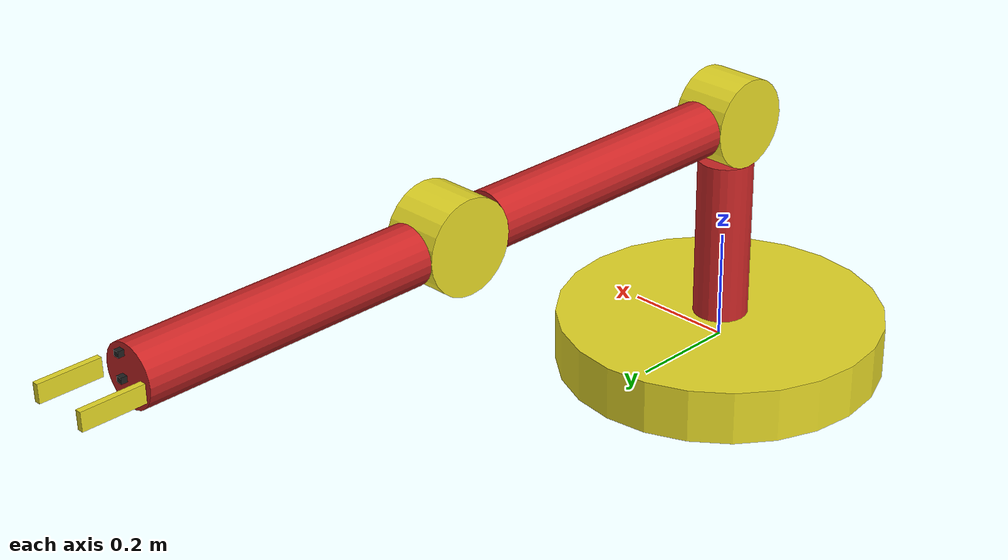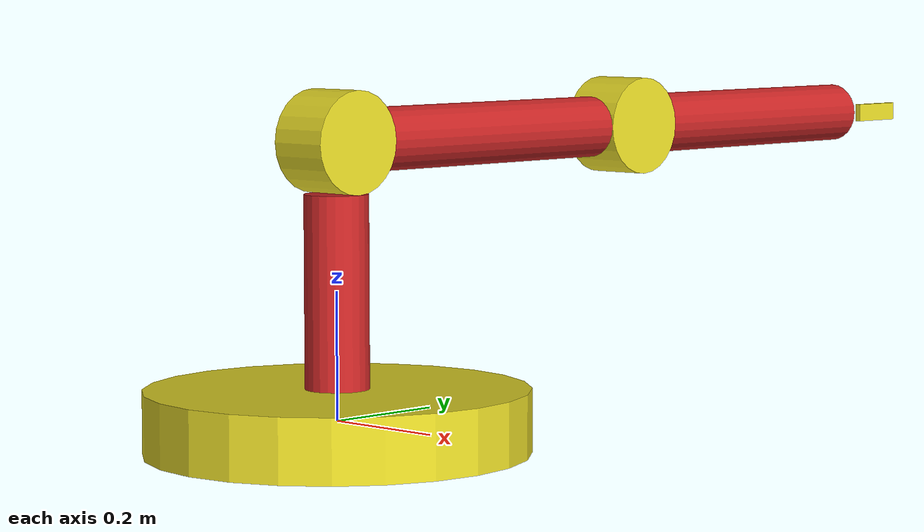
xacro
<?xml version='1.0'?>
<robot name="arm" xmlns:xacro="http://www.ros.org/wiki/xacro">
  <xacro:include filename="$(find arm_description)/urdf/arm.gazebo" />
  <xacro:include filename="$(find arm_description)/urdf/macros.xacro" />

  <xacro:property name="base_radius" value="0.3" />
  <xacro:property name="base_height" value="0.1" />
  <xacro:property name="base_mass" value="100" />

  <xacro:property name="post_radius" value="0.05" />
  <xacro:property name="post_height" value="0.3" />
  <xacro:property name="post_mass" value="1" />

  <xacro:property name="elbow_radius" value="0.08" />
  <xacro:property name="elbow_mass" value="0.3" />

  <xacro:property name="arm_1_radius" value="0.05" />
  <xacro:property name="arm_1_length" value="0.5" />
  <xacro:property name="arm_1_mass" value="1" />

  <xacro:property name="arm_2_radius" value="0.05" />
  <xacro:property name="arm_2_length" value="0.5" />
  <xacro:property name="arm_2_mass" value="2" />

  <xacro:property name="finger_thickness" value="0.01" />
  <xacro:property name="finger_length" value="0.1" />
  <xacro:property name="grip_width" value="0.1" />
  <xacro:property name="finger_mass" value="0.1" />

  <link name='base'>
    <inertial>
      <mass value="${base_mass}"/>
      <origin xyz="0 0 0" rpy=" 0 0 0"/>
      <xacro:cylinder_inertia m="${base_mass}" r="${base_radius}" h="${base_height}" />
    </inertial>
    <collision>
      <origin xyz="0 0 0" rpy=" 0 0 0"/>
      <geometry>
        <cylinder length="${base_height}" radius="${base_radius}"/>
      </geometry>
    </collision>
    <visual>
      <origin xyz="0 0 0" rpy=" 0 0 0"/>
      <geometry>
        <cylinder length="${base_height}" radius="${base_radius}"/>
      </geometry>
    </visual>
  </link>

  <link name='post'>
    <inertial>
      <mass value="${post_mass}"/>
      <origin xyz="0 0 0" rpy=" 0 0 0"/>
      <xacro:cylinder_inertia m="${post_mass}" r="${post_radius}" h="${post_height}" />
    </inertial>
    <collision>
      <origin xyz="0 0 0" rpy=" 0 0 0"/>
      <geometry>
        <cylinder length="${post_height}" radius="${post_radius}"/>
      </geometry>
    </collision>
    <visual>
      <origin xyz="0 0 0" rpy=" 0 0 0"/>
      <geometry>
        <cylinder length="${post_height}" radius="${post_radius}"/>
      </geometry>
    </visual>
  </link>

  <link name='elbow_1'>
    <inertial>
      <mass value="${elbow_mass}"/>
      <origin xyz="0 0 0" rpy=" 0 0 0"/>
      <xacro:cylinder_inertia m="${elbow_mass}" r="${elbow_radius}" h="${2 * post_radius}" />
    </inertial>
    <collision>
      <origin xyz="0 0 0" rpy=" 0 0 0"/>
      <geometry>
        <cylinder length="${2 * post_radius}" radius="${elbow_radius}"/>
      </geometry>
    </collision>
    <visual>
      <origin xyz="0 0 0" rpy=" 0 0 0"/>
      <geometry>
        <cylinder length="${2 * post_radius}" radius="${elbow_radius}"/>
      </geometry>
    </visual>
  </link>

  <link name='arm_1'>
    <inertial>
      <mass value="${arm_1_mass}"/>
      <origin xyz="0 0 0" rpy=" 0 0 0"/>
      <xacro:cylinder_inertia m="${arm_1_mass}" r="${arm_1_radius}" h="${arm_1_length}" />
    </inertial>
    <collision>
      <origin xyz="0 0 0" rpy=" 0 0 0"/>
      <geometry>
        <cylinder length="${arm_1_length}" radius="${arm_1_radius}"/>
      </geometry>
    </collision>
    <visual>
      <origin xyz="0 0 0" rpy=" 0 0 0"/>
      <geometry>
        <cylinder length="${arm_1_length}" radius="${arm_1_radius}"/>
      </geometry>
    </visual>
  </link>

  <link name='elbow_2'>
    <inertial>
      <mass value="${elbow_mass}"/>
      <origin xyz="0 0 0" rpy=" 0 0 0"/>
      <xacro:cylinder_inertia m="${elbow_mass}" r="${elbow_radius}" h="${2 * arm_1_radius}" />
    </inertial>
    <collision>
      <origin xyz="0 0 0" rpy=" 0 0 0"/>
      <geometry>
        <cylinder length="${2 * arm_1_radius}" radius="${elbow_radius}"/>
      </geometry>
    </collision>
    <visual>
      <origin xyz="0 0 0" rpy=" 0 0 0"/>
      <geometry>
        <cylinder length="${2 * arm_1_radius}" radius="${elbow_radius}"/>
      </geometry>
    </visual>
  </link>

  <link name='arm_2'>
    <inertial>
      <mass value="${arm_2_mass}"/>
      <origin xyz="0 0 0" rpy=" 0 0 0"/>
      <xacro:cylinder_inertia m="${arm_2_mass}" r="${arm_2_radius}" h="${arm_2_length}" />
    </inertial>
    <collision>
      <origin xyz="0 0 0" rpy=" 0 0 0"/>
      <geometry>
        <cylinder length="${arm_2_length}" radius="${arm_2_radius}"/>
      </geometry>
    </collision>
    <visual>
      <origin xyz="0 0 0" rpy=" 0 0 0"/>
      <geometry>
        <cylinder length="${arm_2_length}" radius="${arm_2_radius}"/>
      </geometry>
    </visual>
  </link>

  <link name='left_finger'>
    <inertial>
      <mass value="${finger_mass}"/>
      <origin xyz="0 0 0" rpy=" 0 0 0"/>
      <xacro:box_inertia m="${finger_mass}" x="${finger_thickness * 3}" y="${finger_thickness}" z="${finger_length}" />
    </inertial>
    <collision>
      <origin xyz="0 0 0" rpy=" 0 0 0"/>
      <geometry>
        <box size="${finger_thickness * 3} ${finger_thickness} ${finger_length}"/>
      </geometry>
    </collision>
    <visual>
      <origin xyz="0 0 0" rpy=" 0 0 0"/>
      <geometry>
        <box size="${finger_thickness * 3} ${finger_thickness} ${finger_length}"/>
      </geometry>
    </visual>
    <surface>
      <friction>
        <ode>
          <mu>100</mu>
          <mu2>100</mu2>
        </ode>
      </friction>
    </surface>
  </link>

  <link name='right_finger'>
    <inertial>
      <mass value="${finger_mass}"/>
      <origin xyz="0 0 0" rpy=" 0 0 0"/>
      <xacro:box_inertia m="${finger_mass * 3}" x="${finger_thickness}" y="${finger_thickness}" z="${finger_length}" />
    </inertial>
    <collision>
      <origin xyz="0 0 0" rpy=" 0 0 0"/>
      <geometry>
        <box size="${finger_thickness * 3} ${finger_thickness} ${finger_length}"/>
      </geometry>
    </collision>
    <visual>
      <origin xyz="0 0 0" rpy=" 0 0 0"/>
      <geometry>
        <box size="${finger_thickness * 3} ${finger_thickness} ${finger_length}"/>
      </geometry>
    </visual>
    <surface>
      <friction>
        <ode>
          <mu>100</mu>
          <mu2>100</mu2>
        </ode>
      </friction>
    </surface>
  </link>

  <link name='arm_lidar'>
    <visual>
      <origin xyz="0 0 0" rpy=" 0 0 0"/>
      <geometry>
        <box size="0.01 0.01 0.01"/>
      </geometry>
    </visual>
  </link>

  <link name='arm_camera'>
    <visual>
      <origin xyz="0 0 0" rpy=" 0 0 0"/>
      <geometry>
        <box size="0.01 0.01 0.01"/>
      </geometry>
    </visual>
  </link>

  <joint type="continuous" name="post_joint">
    <origin xyz="0 0 ${base_height / 2 + post_height / 2}" rpy="0 0 0"/>
    <child link="post"/>
    <parent link="base"/>
    <dynamics damping="0.1" friction="0.1"/>
    <axis xyz="0 0 1" />
  </joint>

  <joint type="continuous" name="elbow_1_joint">
    <origin xyz="0 0 ${post_height / 2 + elbow_radius}" rpy="0 1.57 0"/>
    <child link="elbow_1"/>
    <parent link="post"/>
    <dynamics damping="0.1" friction="0.1"/>
    <axis xyz="0 0 1"/>
  </joint>

  <joint type="fixed" name="arm_1_joint">
    <origin xyz="0 ${elbow_radius + arm_1_length / 2} 0" rpy="-1.57 0 0"/>
    <child link="arm_1"/>
    <parent link="elbow_1"/>
    <axis xyz="0 0 0"/>
  </joint>

  <joint type="continuous" name="elbow_2_joint">
    <origin xyz="0 0 ${arm_1_length / 2 + elbow_radius}" rpy="1.57 0 0"/>
    <child link="elbow_2"/>
    <parent link="arm_1"/>
    <dynamics damping="0.1" friction="0.1"/>
    <axis xyz="0 0 1"/>
  </joint>

  <joint type="fixed" name="arm_2_joint">
    <origin xyz="0 ${arm_1_length / 2 + elbow_radius} 0" rpy="-1.57 0 0"/>
    <child link="arm_2"/>
    <parent link="elbow_2"/>
    <axis xyz="0 0 0"/>
  </joint>

  <joint type="prismatic" name="left_finger_joint">
    <origin xyz="0 ${- grip_width / 2} ${arm_2_length / 2 + finger_length / 2 + 0.01}" rpy="0 0 0"/>
    <limit effort="1000000" upper="${grip_width / 2}" lower="0" velocity="10" />
    <child link="left_finger"/>
    <parent link="arm_2"/>
    <axis xyz="0 1 0"/>
  </joint>

  <joint type="prismatic" name="right_finger_joint">
    <origin xyz="0 ${grip_width / 2} ${arm_2_length / 2 + finger_length / 2 + 0.01}" rpy="0 0 0"/>
    <limit effort="1000000" lower="${-grip_width / 2}" upper="0" velocity="10" />
    <child link="right_finger"/>
    <parent link="arm_2"/>
    <axis xyz="0 1 0"/>
  </joint>

  <joint type="fixed" name="lidar_joint">
    <origin xyz="-0.04 0 ${arm_2_length / 2 + 0.01}" rpy="0 -1.57 0"/>
    <child link="arm_lidar"/>
    <parent link="arm_2"/>
    <axis xyz="0 0 0"/>
  </joint>

  <joint type="fixed" name="camera_joint">
    <origin xyz="0 0 ${arm_2_length / 2 + 0.01}" rpy="0 -1.57 0"/>
    <child link="arm_camera"/>
    <parent link="arm_2"/>
    <axis xyz="0 0 0"/>
  </joint>

  <transmission name="post_transmission">
    <type>transmission_interface/SimpleTransmission</type>
    <joint name="post_joint">
      <hardwareInterface>hardware_interface/EffortJointInterface</hardwareInterface>
    </joint>
    <actuator name="post_stepper_motor">
      <hardwareInterface>hardware_interface/EffortJointInterface</hardwareInterface>
      <mechanicalReduction>1</mechanicalReduction>
    </actuator>
  </transmission>

  <transmission name="elbow_1_transmission">
    <type>transmission_interface/SimpleTransmission</type>
    <joint name="elbow_1_joint">
      <hardwareInterface>hardware_interface/EffortJointInterface</hardwareInterface>
    </joint>
    <actuator name="elbow_1_stepper_motor">
      <hardwareInterface>hardware_interface/EffortJointInterface</hardwareInterface>
      <mechanicalReduction>1</mechanicalReduction>
    </actuator>
  </transmission>

  <transmission name="elbow_2_transmission">
    <type>transmission_interface/SimpleTransmission</type>
    <joint name="elbow_2_joint">
      <hardwareInterface>hardware_interface/EffortJointInterface</hardwareInterface>
    </joint>
    <actuator name="elbow_2_stepper_motor">
      <hardwareInterface>hardware_interface/EffortJointInterface</hardwareInterface>
      <mechanicalReduction>1</mechanicalReduction>
    </actuator>
  </transmission>

  <transmission name="left_finger_transmission">
    <type>transmission_interface/SimpleTransmission</type>
    <joint name="left_finger_joint">
      <hardwareInterface>hardware_interface/EffortJointInterface</hardwareInterface>
    </joint>
    <actuator name="left_finger_actuator">
      <hardwareInterface>hardware_interface/EffortJointInterface</hardwareInterface>
      <mechanicalReduction>1</mechanicalReduction>
    </actuator>
  </transmission>

  <transmission name="right_finger_transmission">
    <type>transmission_interface/SimpleTransmission</type>
    <joint name="right_finger_joint">
      <hardwareInterface>hardware_interface/EffortJointInterface</hardwareInterface>
    </joint>
    <actuator name="right_finger_actuator">
      <hardwareInterface>hardware_interface/EffortJointInterface</hardwareInterface>
      <mechanicalReduction>1</mechanicalReduction>
    </actuator>
  </transmission>

  <gazebo>
    <plugin name="gazebo_ros_control" filename="libgazebo_ros_control.so">
      <robotNamespace>/arm</robotNamespace>
      <legacyModeNS>true</legacyModeNS>
    </plugin>
  </gazebo>

</robot>
